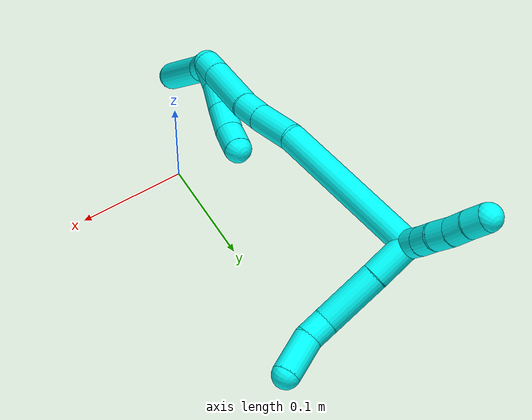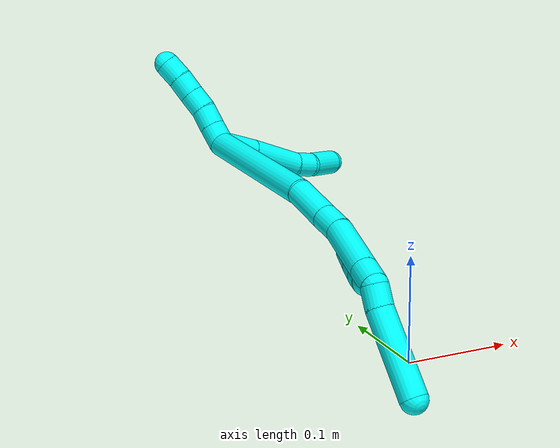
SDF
<sdf version="1.7">
 <world name="default">
  <model name="photoneo_s_sensor">
   <static>1</static>
   <pose>0 0 2 1.57079 1.57079 3.14159</pose>
   <link name="link">
    <inertial><mass>0.1</mass></inertial>
    <sensor name="sensor" type="depth">
     <update_rate>30</update_rate>
     <camera>
      <horizontal_fov>1.22</horizontal_fov>
      <image><width>1920</width><height>1200</height><format>B8G8R8</format></image>
      <clip><near>0.1</near><far>4</far></clip>
      <depth_camera><output>points</output></depth_camera>
     </camera>
     <plugin name="camera_plugin" filename="libgazebo_ros_depth_camera.so">
      <baseline>0.2</baseline>
      <alwaysOn>1</alwaysOn>
      <updateRate>0.0</updateRate>
      <cameraName>camera_ir</cameraName>
      <imageTopicName>/camera/color/image_raw</imageTopicName>
      <cameraInfoTopicName>/camera/color/camera_info</cameraInfoTopicName>
      <depthImageTopicName>/camera/depth/image_raw</depthImageTopicName>
      <depthImageCameraInfoTopicName>/camera/depth/camera_info</depthImageCameraInfoTopicName>
      <pointCloudTopicName>/camera/depth/points</pointCloudTopicName>
      <frameName>fr_optical</frameName>
      <pointCloudCutoff>0.1</pointCloudCutoff>
      <pointCloudCutoffMax>2.0</pointCloudCutoffMax>
      <distortionK1>0</distortionK1>
      <distortionK2>0</distortionK2>
      <distortionK3>0</distortionK3>
      <distortionT1>0</distortionT1>
      <distortionT2>0</distortionT2>
      <CxPrime>0</CxPrime>
      <Cx>0</Cx>
      <Cy>0</Cy>
      <focalLength>0</focalLength>
      <hackBaseline>0</hackBaseline>
     </plugin>
    </sensor>
   </link>
  </model>
  <model name="bin">
   <static>1</static>
   <link name="bottom">
    <collision name="collision-bottom">
     <pose>0 0 -0.01 0 -0 0</pose>
     <geometry><box><size>0.8 0.6 0.02</size></box></geometry>
     <surface>
      <friction><ode><mu>100</mu><mu2>100</mu2></ode></friction>
      <contact><collide_bitmask>65535</collide_bitmask></contact>
     </surface>
    </collision>
   </link>
   <link name="west_wall">
    <collision name="collision-west_wall">
     <pose>-0.41 0 0.1 0 -0 0</pose>
     <geometry><box><size>0.02 0.6 0.2</size></box></geometry>
     <surface>
      <friction><ode><mu>100</mu><mu2>100</mu2></ode></friction>
      <contact><collide_bitmask>65535</collide_bitmask></contact>
     </surface>
    </collision>
   </link>
   <link name="east_wall">
    <collision name="collision-east_wall">
     <pose>0.41 0 0.1 0 -0 0</pose>
     <geometry><box><size>0.02 0.6 0.2</size></box></geometry>
     <surface>
      <friction><ode><mu>100</mu><mu2>100</mu2></ode></friction>
      <contact><collide_bitmask>65535</collide_bitmask></contact>
     </surface>
    </collision>
   </link>
   <link name="south_wall">
    <collision name="collision-south_wall">
     <pose>0 -0.31 0.1 0 -0 0</pose>
     <geometry><box><size>0.8 0.02 0.2</size></box></geometry>
     <surface>
      <friction><ode><mu>100</mu><mu2>100</mu2></ode></friction>
      <contact><collide_bitmask>65535</collide_bitmask></contact>
     </surface>
    </collision>
   </link>
   <link name="north_wall">
    <collision name="collision-north_wall">
     <pose>0 0.31 0.1 0 -0 0</pose>
     <geometry><box><size>0.8 0.02 0.2</size></box></geometry>
     <surface>
      <friction><ode><mu>100</mu><mu2>100</mu2></ode></friction>
      <contact><collide_bitmask>65535</collide_bitmask></contact>
     </surface>
    </collision>
   </link>
  </model>
  <model name="3">
   <static>0</static>
   <link name="3">
    <collision name="collision-cylinder-e_1_2_8">
     <pose>-0.016974 -0.008459 -0.001041 1.69325 -1.10543 -1.21799</pose>
     <geometry><cylinder><radius>0.0125</radius><length>0.037987</length></cylinder></geometry>
     <surface>
      <friction><ode><mu>1.16</mu><mu2>1.16</mu2><slip1>0</slip1><slip2>0</slip2></ode></friction>
      <contact><ode><kp>1e+06</kp><kd>1</kd><max_vel>0</max_vel><min_depth>0.001</min_depth></ode></contact>
     </surface>
    </collision>
    <visual name="visual-cylinder-e_1_2_8">
     <pose>-0.016974 -0.008459 -0.001041 1.69325 -1.10543 -1.21799</pose>
     <geometry><cylinder><radius>0.0125</radius><length>0.037987</length></cylinder></geometry>
     <material><ambient>0.003922 1 0.996078 1</ambient></material>
    </visual>
    <collision name="collision-cylinder-e_2_8_9">
     <pose>-0.057909 -0.029763 -0.004849 1.78298 -1.06924 -1.26543</pose>
     <geometry><cylinder><radius>0.0125</radius><length>0.054656</length></cylinder></geometry>
     <surface>
      <friction><ode><mu>1.16</mu><mu2>1.16</mu2><slip1>0</slip1><slip2>0</slip2></ode></friction>
      <contact><ode><kp>1e+06</kp><kd>1</kd><max_vel>0</max_vel><min_depth>0.001</min_depth></ode></contact>
     </surface>
    </collision>
    <visual name="visual-cylinder-e_2_8_9">
     <pose>-0.057909 -0.029763 -0.004849 1.78298 -1.06924 -1.26543</pose>
     <geometry><cylinder><radius>0.0125</radius><length>0.054656</length></cylinder></geometry>
     <material><ambient>0.003922 1 0.996078 1</ambient></material>
    </visual>
    <collision name="collision-cylinder-e_3_9_10">
     <pose>-0.091592 -0.045762 -0.007115 1.41324 -1.25327 -1.10715</pose>
     <geometry><cylinder><radius>0.0125</radius><length>0.020464</length></cylinder></geometry>
     <surface>
      <friction><ode><mu>1.16</mu><mu2>1.16</mu2><slip1>0</slip1><slip2>0</slip2></ode></friction>
      <contact><ode><kp>1e+06</kp><kd>1</kd><max_vel>0</max_vel><min_depth>0.001</min_depth></ode></contact>
     </surface>
    </collision>
    <visual name="visual-cylinder-e_3_9_10">
     <pose>-0.091592 -0.045762 -0.007115 1.41324 -1.25327 -1.10715</pose>
     <geometry><cylinder><radius>0.0125</radius><length>0.020464</length></cylinder></geometry>
     <material><ambient>0.003922 1 0.996078 1</ambient></material>
    </visual>
    <collision name="collision-cylinder-e_4_10_6">
     <pose>-0.117479 -0.055264 -0.000397 0.795754 -1.0683 -0.48733</pose>
     <geometry><cylinder><radius>0.0125</radius><length>0.036894</length></cylinder></geometry>
     <surface>
      <friction><ode><mu>1.16</mu><mu2>1.16</mu2><slip1>0</slip1><slip2>0</slip2></ode></friction>
      <contact><ode><kp>1e+06</kp><kd>1</kd><max_vel>0</max_vel><min_depth>0.001</min_depth></ode></contact>
     </surface>
    </collision>
    <visual name="visual-cylinder-e_4_10_6">
     <pose>-0.117479 -0.055264 -0.000397 0.795754 -1.0683 -0.48733</pose>
     <geometry><cylinder><radius>0.0125</radius><length>0.036894</length></cylinder></geometry>
     <material><ambient>0.003922 1 0.996078 1</ambient></material>
    </visual>
    <collision name="collision-cylinder-e_1_2_11">
     <pose>0.001348 0.005822 0.008018 -0.628054 0.135238 -0.043982</pose>
     <geometry><cylinder><radius>0.0125</radius><length>0.02</length></cylinder></geometry>
     <surface>
      <friction><ode><mu>1.16</mu><mu2>1.16</mu2><slip1>0</slip1><slip2>0</slip2></ode></friction>
      <contact><ode><kp>1e+06</kp><kd>1</kd><max_vel>0</max_vel><min_depth>0.001</min_depth></ode></contact>
     </surface>
    </collision>
    <visual name="visual-cylinder-e_1_2_11">
     <pose>0.001348 0.005822 0.008018 -0.628054 0.135238 -0.043982</pose>
     <geometry><cylinder><radius>0.0125</radius><length>0.02</length></cylinder></geometry>
     <material><ambient>0.003922 1 0.996078 1</ambient></material>
    </visual>
    <collision name="collision-cylinder-e_2_11_12">
     <pose>0.004027 0.017978 0.023658 -0.693333 0.133482 -0.048283</pose>
     <geometry><cylinder><radius>0.0125</radius><length>0.02</length></cylinder></geometry>
     <surface>
      <friction><ode><mu>1.16</mu><mu2>1.16</mu2><slip1>0</slip1><slip2>0</slip2></ode></friction>
      <contact><ode><kp>1e+06</kp><kd>1</kd><max_vel>0</max_vel><min_depth>0.001</min_depth></ode></contact>
     </surface>
    </collision>
    <visual name="visual-cylinder-e_2_11_12">
     <pose>0.004027 0.017978 0.023658 -0.693333 0.133482 -0.048283</pose>
     <geometry><cylinder><radius>0.0125</radius><length>0.02</length></cylinder></geometry>
     <material><ambient>0.003922 1 0.996078 1</ambient></material>
    </visual>
    <collision name="collision-cylinder-e_3_12_13">
     <pose>0.008407 0.029881 0.039008 -0.624486 0.309798 -0.100726</pose>
     <geometry><cylinder><radius>0.0125</radius><length>0.02</length></cylinder></geometry>
     <surface>
      <friction><ode><mu>1.16</mu><mu2>1.16</mu2><slip1>0</slip1><slip2>0</slip2></ode></friction>
      <contact><ode><kp>1e+06</kp><kd>1</kd><max_vel>0</max_vel><min_depth>0.001</min_depth></ode></contact>
     </surface>
    </collision>
    <visual name="visual-cylinder-e_3_12_13">
     <pose>0.008407 0.029881 0.039008 -0.624486 0.309798 -0.100726</pose>
     <geometry><cylinder><radius>0.0125</radius><length>0.02</length></cylinder></geometry>
     <material><ambient>0.003922 1 0.996078 1</ambient></material>
    </visual>
    <collision name="collision-cylinder-e_4_13_14">
     <pose>0.014642 0.041692 0.053867 -0.71889 0.324275 -0.122777</pose>
     <geometry><cylinder><radius>0.0125</radius><length>0.02</length></cylinder></geometry>
     <surface>
      <friction><ode><mu>1.16</mu><mu2>1.16</mu2><slip1>0</slip1><slip2>0</slip2></ode></friction>
      <contact><ode><kp>1e+06</kp><kd>1</kd><max_vel>0</max_vel><min_depth>0.001</min_depth></ode></contact>
     </surface>
    </collision>
    <visual name="visual-cylinder-e_4_13_14">
     <pose>0.014642 0.041692 0.053867 -0.71889 0.324275 -0.122777</pose>
     <geometry><cylinder><radius>0.0125</radius><length>0.02</length></cylinder></geometry>
     <material><ambient>0.003922 1 0.996078 1</ambient></material>
    </visual>
    <collision name="collision-cylinder-e_5_14_5">
     <pose>0.021813 0.053633 0.068186 -0.670559 0.409895 -0.144603</pose>
     <geometry><cylinder><radius>0.0125</radius><length>0.02</length></cylinder></geometry>
     <surface>
      <friction><ode><mu>1.16</mu><mu2>1.16</mu2><slip1>0</slip1><slip2>0</slip2></ode></friction>
      <contact><ode><kp>1e+06</kp><kd>1</kd><max_vel>0</max_vel><min_depth>0.001</min_depth></ode></contact>
     </surface>
    </collision>
    <visual name="visual-cylinder-e_5_14_5">
     <pose>0.021813 0.053633 0.068186 -0.670559 0.409895 -0.144603</pose>
     <geometry><cylinder><radius>0.0125</radius><length>0.02</length></cylinder></geometry>
     <material><ambient>0.003922 1 0.996078 1</ambient></material>
    </visual>
    <collision name="collision-cylinder-e_1_2_15">
     <pose>-0.003718 0.015669 -0.074758 -2.93499 -0.048636 0.460905</pose>
     <geometry><cylinder><radius>0.0125</radius><length>0.152945</length></cylinder></geometry>
     <surface>
      <friction><ode><mu>1.16</mu><mu2>1.16</mu2><slip1>0</slip1><slip2>0</slip2></ode></friction>
      <contact><ode><kp>1e+06</kp><kd>1</kd><max_vel>0</max_vel><min_depth>0.001</min_depth></ode></contact>
     </surface>
    </collision>
    <visual name="visual-cylinder-e_1_2_15">
     <pose>-0.003718 0.015669 -0.074758 -2.93499 -0.048636 0.460905</pose>
     <geometry><cylinder><radius>0.0125</radius><length>0.152945</length></cylinder></geometry>
     <material><ambient>0.003922 1 0.996078 1</ambient></material>
    </visual>
    <collision name="collision-cylinder-e_2_15_16">
     <pose>-0.008643 0.030841 -0.171232 3.11877 -0.055505 -2.36148</pose>
     <geometry><cylinder><radius>0.0125</radius><length>0.04351</length></cylinder></geometry>
     <surface>
      <friction><ode><mu>1.16</mu><mu2>1.16</mu2><slip1>0</slip1><slip2>0</slip2></ode></friction>
      <contact><ode><kp>1e+06</kp><kd>1</kd><max_vel>0</max_vel><min_depth>0.001</min_depth></ode></contact>
     </surface>
    </collision>
    <visual name="visual-cylinder-e_2_15_16">
     <pose>-0.008643 0.030841 -0.171232 3.11877 -0.055505 -2.36148</pose>
     <geometry><cylinder><radius>0.0125</radius><length>0.04351</length></cylinder></geometry>
     <material><ambient>0.003922 1 0.996078 1</ambient></material>
    </visual>
    <collision name="collision-cylinder-e_3_16_17">
     <pose>-0.010087 0.030767 -0.204955 -3.10648 -0.019797 1.02679</pose>
     <geometry><cylinder><radius>0.0125</radius><length>0.024034</length></cylinder></geometry>
     <surface>
      <friction><ode><mu>1.16</mu><mu2>1.16</mu2><slip1>0</slip1><slip2>0</slip2></ode></friction>
      <contact><ode><kp>1e+06</kp><kd>1</kd><max_vel>0</max_vel><min_depth>0.001</min_depth></ode></contact>
     </surface>
    </collision>
    <visual name="visual-cylinder-e_3_16_17">
     <pose>-0.010087 0.030767 -0.204955 -3.10648 -0.019797 1.02679</pose>
     <geometry><cylinder><radius>0.0125</radius><length>0.024034</length></cylinder></geometry>
     <material><ambient>0.003922 1 0.996078 1</ambient></material>
    </visual>
    <collision name="collision-cylinder-e_4_17_18">
     <pose>-0.006038 0.031107 -0.245421 3.1387 0.14952 3.10293</pose>
     <geometry><cylinder><radius>0.0125</radius><length>0.05756</length></cylinder></geometry>
     <surface>
      <friction><ode><mu>1.16</mu><mu2>1.16</mu2><slip1>0</slip1><slip2>0</slip2></ode></friction>
      <contact><ode><kp>1e+06</kp><kd>1</kd><max_vel>0</max_vel><min_depth>0.001</min_depth></ode></contact>
     </surface>
    </collision>
    <visual name="visual-cylinder-e_4_17_18">
     <pose>-0.006038 0.031107 -0.245421 3.1387 0.14952 3.10293</pose>
     <geometry><cylinder><radius>0.0125</radius><length>0.05756</length></cylinder></geometry>
     <material><ambient>0.003922 1 0.996078 1</ambient></material>
    </visual>
    <collision name="collision-cylinder-e_5_18_1">
     <pose>-0.000142 0.030976 -0.284737 3.13713 0.147157 3.08106</pose>
     <geometry><cylinder><radius>0.0125</radius><length>0.02195</length></cylinder></geometry>
     <surface>
      <friction><ode><mu>1.16</mu><mu2>1.16</mu2><slip1>0</slip1><slip2>0</slip2></ode></friction>
      <contact><ode><kp>1e+06</kp><kd>1</kd><max_vel>0</max_vel><min_depth>0.001</min_depth></ode></contact>
     </surface>
    </collision>
    <visual name="visual-cylinder-e_5_18_1">
     <pose>-0.000142 0.030976 -0.284737 3.13713 0.147157 3.08106</pose>
     <geometry><cylinder><radius>0.0125</radius><length>0.02195</length></cylinder></geometry>
     <material><ambient>0.003922 1 0.996078 1</ambient></material>
    </visual>
    <collision name="collision-cylinder-e_1_1_19">
     <pose>0.002724 0.024063 -0.303034 2.39648 0.123444 0.313675</pose>
     <geometry><cylinder><radius>0.0125</radius><length>0.020404</length></cylinder></geometry>
     <surface>
      <friction><ode><mu>1.16</mu><mu2>1.16</mu2><slip1>0</slip1><slip2>0</slip2></ode></friction>
      <contact><ode><kp>1e+06</kp><kd>1</kd><max_vel>0</max_vel><min_depth>0.001</min_depth></ode></contact>
     </surface>
    </collision>
    <visual name="visual-cylinder-e_1_1_19">
     <pose>0.002724 0.024063 -0.303034 2.39648 0.123444 0.313675</pose>
     <geometry><cylinder><radius>0.0125</radius><length>0.020404</length></cylinder></geometry>
     <material><ambient>0.003922 1 0.996078 1</ambient></material>
    </visual>
    <collision name="collision-cylinder-e_2_19_4">
     <pose>0.005974 -0.004754 -0.343613 2.55652 0.050139 0.166129</pose>
     <geometry><cylinder><radius>0.0125</radius><length>0.079596</length></cylinder></geometry>
     <surface>
      <friction><ode><mu>1.16</mu><mu2>1.16</mu2><slip1>0</slip1><slip2>0</slip2></ode></friction>
      <contact><ode><kp>1e+06</kp><kd>1</kd><max_vel>0</max_vel><min_depth>0.001</min_depth></ode></contact>
     </surface>
    </collision>
    <visual name="visual-cylinder-e_2_19_4">
     <pose>0.005974 -0.004754 -0.343613 2.55652 0.050139 0.166129</pose>
     <geometry><cylinder><radius>0.0125</radius><length>0.079596</length></cylinder></geometry>
     <material><ambient>0.003922 1 0.996078 1</ambient></material>
    </visual>
    <collision name="collision-cylinder-e_1_1_20">
     <pose>-0.00078 0.025145 -0.286068 0.545617 -0.198996 -0.055846</pose>
     <geometry><cylinder><radius>0.0125</radius><length>0.022734</length></cylinder></geometry>
     <surface>
      <friction><ode><mu>1.16</mu><mu2>1.16</mu2><slip1>0</slip1><slip2>0</slip2></ode></friction>
      <contact><ode><kp>1e+06</kp><kd>1</kd><max_vel>0</max_vel><min_depth>0.001</min_depth></ode></contact>
     </surface>
    </collision>
    <visual name="visual-cylinder-e_1_1_20">
     <pose>-0.00078 0.025145 -0.286068 0.545617 -0.198996 -0.055846</pose>
     <geometry><cylinder><radius>0.0125</radius><length>0.022734</length></cylinder></geometry>
     <material><ambient>0.003922 1 0.996078 1</ambient></material>
    </visual>
    <collision name="collision-cylinder-e_2_20_21">
     <pose>-0.007461 0.013666 -0.266102 0.499475 -0.356818 -0.091924</pose>
     <geometry><cylinder><radius>0.0125</radius><length>0.025388</length></cylinder></geometry>
     <surface>
      <friction><ode><mu>1.16</mu><mu2>1.16</mu2><slip1>0</slip1><slip2>0</slip2></ode></friction>
      <contact><ode><kp>1e+06</kp><kd>1</kd><max_vel>0</max_vel><min_depth>0.001</min_depth></ode></contact>
     </surface>
    </collision>
    <visual name="visual-cylinder-e_2_20_21">
     <pose>-0.007461 0.013666 -0.266102 0.499475 -0.356818 -0.091924</pose>
     <geometry><cylinder><radius>0.0125</radius><length>0.025388</length></cylinder></geometry>
     <material><ambient>0.003922 1 0.996078 1</ambient></material>
    </visual>
    <collision name="collision-cylinder-e_3_21_22">
     <pose>-0.016578 0.003727 -0.243764 0.342456 -0.355084 -0.062035</pose>
     <geometry><cylinder><radius>0.0125</radius><length>0.026941</length></cylinder></geometry>
     <surface>
      <friction><ode><mu>1.16</mu><mu2>1.16</mu2><slip1>0</slip1><slip2>0</slip2></ode></friction>
      <contact><ode><kp>1e+06</kp><kd>1</kd><max_vel>0</max_vel><min_depth>0.001</min_depth></ode></contact>
     </surface>
    </collision>
    <visual name="visual-cylinder-e_3_21_22">
     <pose>-0.016578 0.003727 -0.243764 0.342456 -0.355084 -0.062035</pose>
     <geometry><cylinder><radius>0.0125</radius><length>0.026941</length></cylinder></geometry>
     <material><ambient>0.003922 1 0.996078 1</ambient></material>
    </visual>
    <collision name="collision-cylinder-e_4_22_3">
     <pose>-0.024848 -0.001724 -0.219987 0.101543 -0.291787 -0.014933</pose>
     <geometry><cylinder><radius>0.0125</radius><length>0.024938</length></cylinder></geometry>
     <surface>
      <friction><ode><mu>1.16</mu><mu2>1.16</mu2><slip1>0</slip1><slip2>0</slip2></ode></friction>
      <contact><ode><kp>1e+06</kp><kd>1</kd><max_vel>0</max_vel><min_depth>0.001</min_depth></ode></contact>
     </surface>
    </collision>
    <visual name="visual-cylinder-e_4_22_3">
     <pose>-0.024848 -0.001724 -0.219987 0.101543 -0.291787 -0.014933</pose>
     <geometry><cylinder><radius>0.0125</radius><length>0.024938</length></cylinder></geometry>
     <material><ambient>0.003922 1 0.996078 1</ambient></material>
    </visual>
    <collision name="collision-sphere-3">
     <pose>-0.028435 -0.002935 -0.208107 0 -0 0</pose>
     <geometry><sphere><radius>0.0125</radius></sphere></geometry>
     <surface>
      <friction><ode><mu>1.16</mu><mu2>1.16</mu2><slip1>0</slip1><slip2>0</slip2></ode></friction>
      <contact><ode><kp>1e+06</kp><kd>1</kd><max_vel>0</max_vel><min_depth>0.001</min_depth></ode></contact>
     </surface>
    </collision>
    <visual name="visual-sphere-3">
     <pose>-0.028435 -0.002935 -0.208107 0 -0 0</pose>
     <geometry><sphere><radius>0.0125</radius></sphere></geometry>
     <material><ambient>0.003922 1 0.996078 1</ambient></material>
    </visual>
    <collision name="collision-sphere-22">
     <pose>-0.021261 -0.000514 -0.231867 0 -0 0</pose>
     <geometry><sphere><radius>0.0125</radius></sphere></geometry>
     <surface>
      <friction><ode><mu>1.16</mu><mu2>1.16</mu2><slip1>0</slip1><slip2>0</slip2></ode></friction>
      <contact><ode><kp>1e+06</kp><kd>1</kd><max_vel>0</max_vel><min_depth>0.001</min_depth></ode></contact>
     </surface>
    </collision>
    <visual name="visual-sphere-22">
     <pose>-0.021261 -0.000514 -0.231867 0 -0 0</pose>
     <geometry><sphere><radius>0.0125</radius></sphere></geometry>
     <material><ambient>0.003922 1 0.996078 1</ambient></material>
    </visual>
    <collision name="collision-sphere-21">
     <pose>-0.011895 0.007969 -0.25566 0 -0 0</pose>
     <geometry><sphere><radius>0.0125</radius></sphere></geometry>
     <surface>
      <friction><ode><mu>1.16</mu><mu2>1.16</mu2><slip1>0</slip1><slip2>0</slip2></ode></friction>
      <contact><ode><kp>1e+06</kp><kd>1</kd><max_vel>0</max_vel><min_depth>0.001</min_depth></ode></contact>
     </surface>
    </collision>
    <visual name="visual-sphere-21">
     <pose>-0.011895 0.007969 -0.25566 0 -0 0</pose>
     <geometry><sphere><radius>0.0125</radius></sphere></geometry>
     <material><ambient>0.003922 1 0.996078 1</ambient></material>
    </visual>
    <collision name="collision-sphere-20">
     <pose>-0.003027 0.019363 -0.276543 0 -0 0</pose>
     <geometry><sphere><radius>0.0125</radius></sphere></geometry>
     <surface>
      <friction><ode><mu>1.16</mu><mu2>1.16</mu2><slip1>0</slip1><slip2>0</slip2></ode></friction>
      <contact><ode><kp>1e+06</kp><kd>1</kd><max_vel>0</max_vel><min_depth>0.001</min_depth></ode></contact>
     </surface>
    </collision>
    <visual name="visual-sphere-20">
     <pose>-0.003027 0.019363 -0.276543 0 -0 0</pose>
     <geometry><sphere><radius>0.0125</radius></sphere></geometry>
     <material><ambient>0.003922 1 0.996078 1</ambient></material>
    </visual>
    <collision name="collision-sphere-4">
     <pose>0.007969 -0.026705 -0.376749 0 -0 0</pose>
     <geometry><sphere><radius>0.0125</radius></sphere></geometry>
     <surface>
      <friction><ode><mu>1.16</mu><mu2>1.16</mu2><slip1>0</slip1><slip2>0</slip2></ode></friction>
      <contact><ode><kp>1e+06</kp><kd>1</kd><max_vel>0</max_vel><min_depth>0.001</min_depth></ode></contact>
     </surface>
    </collision>
    <visual name="visual-sphere-4">
     <pose>0.007969 -0.026705 -0.376749 0 -0 0</pose>
     <geometry><sphere><radius>0.0125</radius></sphere></geometry>
     <material><ambient>0.003922 1 0.996078 1</ambient></material>
    </visual>
    <collision name="collision-sphere-11">
     <pose>0.002697 0.011644 0.016036 0 -0 0</pose>
     <geometry><sphere><radius>0.0125</radius></sphere></geometry>
     <surface>
      <friction><ode><mu>1.16</mu><mu2>1.16</mu2><slip1>0</slip1><slip2>0</slip2></ode></friction>
      <contact><ode><kp>1e+06</kp><kd>1</kd><max_vel>0</max_vel><min_depth>0.001</min_depth></ode></contact>
     </surface>
    </collision>
    <visual name="visual-sphere-11">
     <pose>0.002697 0.011644 0.016036 0 -0 0</pose>
     <geometry><sphere><radius>0.0125</radius></sphere></geometry>
     <material><ambient>0.003922 1 0.996078 1</ambient></material>
    </visual>
    <collision name="collision-sphere-6">
     <pose>-0.133645 -0.061611 0.00582 0 -0 0</pose>
     <geometry><sphere><radius>0.0125</radius></sphere></geometry>
     <surface>
      <friction><ode><mu>1.16</mu><mu2>1.16</mu2><slip1>0</slip1><slip2>0</slip2></ode></friction>
      <contact><ode><kp>1e+06</kp><kd>1</kd><max_vel>0</max_vel><min_depth>0.001</min_depth></ode></contact>
     </surface>
    </collision>
    <visual name="visual-sphere-6">
     <pose>-0.133645 -0.061611 0.00582 0 -0 0</pose>
     <geometry><sphere><radius>0.0125</radius></sphere></geometry>
     <material><ambient>0.003922 1 0.996078 1</ambient></material>
    </visual>
    <collision name="collision-sphere-10">
     <pose>-0.101312 -0.048917 -0.006614 0 -0 0</pose>
     <geometry><sphere><radius>0.0125</radius></sphere></geometry>
     <surface>
      <friction><ode><mu>1.16</mu><mu2>1.16</mu2><slip1>0</slip1><slip2>0</slip2></ode></friction>
      <contact><ode><kp>1e+06</kp><kd>1</kd><max_vel>0</max_vel><min_depth>0.001</min_depth></ode></contact>
     </surface>
    </collision>
    <visual name="visual-sphere-10">
     <pose>-0.101312 -0.048917 -0.006614 0 -0 0</pose>
     <geometry><sphere><radius>0.0125</radius></sphere></geometry>
     <material><ambient>0.003922 1 0.996078 1</ambient></material>
    </visual>
    <collision name="collision-sphere-9">
     <pose>-0.081871 -0.042607 -0.007616 0 -0 0</pose>
     <geometry><sphere><radius>0.0125</radius></sphere></geometry>
     <surface>
      <friction><ode><mu>1.16</mu><mu2>1.16</mu2><slip1>0</slip1><slip2>0</slip2></ode></friction>
      <contact><ode><kp>1e+06</kp><kd>1</kd><max_vel>0</max_vel><min_depth>0.001</min_depth></ode></contact>
     </surface>
    </collision>
    <visual name="visual-sphere-9">
     <pose>-0.081871 -0.042607 -0.007616 0 -0 0</pose>
     <geometry><sphere><radius>0.0125</radius></sphere></geometry>
     <material><ambient>0.003922 1 0.996078 1</ambient></material>
    </visual>
    <collision name="collision-sphere-2">
     <geometry><sphere><radius>0.0125</radius></sphere></geometry>
     <surface>
      <friction><ode><mu>1.16</mu><mu2>1.16</mu2><slip1>0</slip1><slip2>0</slip2></ode></friction>
      <contact><ode><kp>1e+06</kp><kd>1</kd><max_vel>0</max_vel><min_depth>0.001</min_depth></ode></contact>
     </surface>
    </collision>
    <visual name="visual-sphere-2">
     <geometry><sphere><radius>0.0125</radius></sphere></geometry>
     <material><ambient>0.003922 1 0.996078 1</ambient></material>
    </visual>
    <collision name="collision-sphere-19">
     <pose>0.00398 0.017198 -0.310476 0 -0 0</pose>
     <geometry><sphere><radius>0.0125</radius></sphere></geometry>
     <surface>
      <friction><ode><mu>1.16</mu><mu2>1.16</mu2><slip1>0</slip1><slip2>0</slip2></ode></friction>
      <contact><ode><kp>1e+06</kp><kd>1</kd><max_vel>0</max_vel><min_depth>0.001</min_depth></ode></contact>
     </surface>
    </collision>
    <visual name="visual-sphere-19">
     <pose>0.00398 0.017198 -0.310476 0 -0 0</pose>
     <geometry><sphere><radius>0.0125</radius></sphere></geometry>
     <material><ambient>0.003922 1 0.996078 1</ambient></material>
    </visual>
    <collision name="collision-sphere-8">
     <pose>-0.033947 -0.016919 -0.002082 0 -0 0</pose>
     <geometry><sphere><radius>0.0125</radius></sphere></geometry>
     <surface>
      <friction><ode><mu>1.16</mu><mu2>1.16</mu2><slip1>0</slip1><slip2>0</slip2></ode></friction>
      <contact><ode><kp>1e+06</kp><kd>1</kd><max_vel>0</max_vel><min_depth>0.001</min_depth></ode></contact>
     </surface>
    </collision>
    <visual name="visual-sphere-8">
     <pose>-0.033947 -0.016919 -0.002082 0 -0 0</pose>
     <geometry><sphere><radius>0.0125</radius></sphere></geometry>
     <material><ambient>0.003922 1 0.996078 1</ambient></material>
    </visual>
    <collision name="collision-sphere-12">
     <pose>0.005358 0.024313 0.031281 0 -0 0</pose>
     <geometry><sphere><radius>0.0125</radius></sphere></geometry>
     <surface>
      <friction><ode><mu>1.16</mu><mu2>1.16</mu2><slip1>0</slip1><slip2>0</slip2></ode></friction>
      <contact><ode><kp>1e+06</kp><kd>1</kd><max_vel>0</max_vel><min_depth>0.001</min_depth></ode></contact>
     </surface>
    </collision>
    <visual name="visual-sphere-12">
     <pose>0.005358 0.024313 0.031281 0 -0 0</pose>
     <geometry><sphere><radius>0.0125</radius></sphere></geometry>
     <material><ambient>0.003922 1 0.996078 1</ambient></material>
    </visual>
    <collision name="collision-sphere-13">
     <pose>0.011456 0.035449 0.046734 0 -0 0</pose>
     <geometry><sphere><radius>0.0125</radius></sphere></geometry>
     <surface>
      <friction><ode><mu>1.16</mu><mu2>1.16</mu2><slip1>0</slip1><slip2>0</slip2></ode></friction>
      <contact><ode><kp>1e+06</kp><kd>1</kd><max_vel>0</max_vel><min_depth>0.001</min_depth></ode></contact>
     </surface>
    </collision>
    <visual name="visual-sphere-13">
     <pose>0.011456 0.035449 0.046734 0 -0 0</pose>
     <geometry><sphere><radius>0.0125</radius></sphere></geometry>
     <material><ambient>0.003922 1 0.996078 1</ambient></material>
    </visual>
    <collision name="collision-sphere-14">
     <pose>0.017828 0.047934 0.061 0 -0 0</pose>
     <geometry><sphere><radius>0.0125</radius></sphere></geometry>
     <surface>
      <friction><ode><mu>1.16</mu><mu2>1.16</mu2><slip1>0</slip1><slip2>0</slip2></ode></friction>
      <contact><ode><kp>1e+06</kp><kd>1</kd><max_vel>0</max_vel><min_depth>0.001</min_depth></ode></contact>
     </surface>
    </collision>
    <visual name="visual-sphere-14">
     <pose>0.017828 0.047934 0.061 0 -0 0</pose>
     <geometry><sphere><radius>0.0125</radius></sphere></geometry>
     <material><ambient>0.003922 1 0.996078 1</ambient></material>
    </visual>
    <collision name="collision-sphere-5">
     <pose>0.025798 0.059333 0.075372 0 -0 0</pose>
     <geometry><sphere><radius>0.0125</radius></sphere></geometry>
     <surface>
      <friction><ode><mu>1.16</mu><mu2>1.16</mu2><slip1>0</slip1><slip2>0</slip2></ode></friction>
      <contact><ode><kp>1e+06</kp><kd>1</kd><max_vel>0</max_vel><min_depth>0.001</min_depth></ode></contact>
     </surface>
    </collision>
    <visual name="visual-sphere-5">
     <pose>0.025798 0.059333 0.075372 0 -0 0</pose>
     <geometry><sphere><radius>0.0125</radius></sphere></geometry>
     <material><ambient>0.003922 1 0.996078 1</ambient></material>
    </visual>
    <collision name="collision-sphere-15">
     <pose>-0.007436 0.031337 -0.149516 0 -0 0</pose>
     <geometry><sphere><radius>0.0125</radius></sphere></geometry>
     <surface>
      <friction><ode><mu>1.16</mu><mu2>1.16</mu2><slip1>0</slip1><slip2>0</slip2></ode></friction>
      <contact><ode><kp>1e+06</kp><kd>1</kd><max_vel>0</max_vel><min_depth>0.001</min_depth></ode></contact>
     </surface>
    </collision>
    <visual name="visual-sphere-15">
     <pose>-0.007436 0.031337 -0.149516 0 -0 0</pose>
     <geometry><sphere><radius>0.0125</radius></sphere></geometry>
     <material><ambient>0.003922 1 0.996078 1</ambient></material>
    </visual>
    <collision name="collision-sphere-16">
     <pose>-0.00985 0.030346 -0.192948 0 -0 0</pose>
     <geometry><sphere><radius>0.0125</radius></sphere></geometry>
     <surface>
      <friction><ode><mu>1.16</mu><mu2>1.16</mu2><slip1>0</slip1><slip2>0</slip2></ode></friction>
      <contact><ode><kp>1e+06</kp><kd>1</kd><max_vel>0</max_vel><min_depth>0.001</min_depth></ode></contact>
     </surface>
    </collision>
    <visual name="visual-sphere-16">
     <pose>-0.00985 0.030346 -0.192948 0 -0 0</pose>
     <geometry><sphere><radius>0.0125</radius></sphere></geometry>
     <material><ambient>0.003922 1 0.996078 1</ambient></material>
    </visual>
    <collision name="collision-sphere-17">
     <pose>-0.010325 0.031189 -0.216963 0 -0 0</pose>
     <geometry><sphere><radius>0.0125</radius></sphere></geometry>
     <surface>
      <friction><ode><mu>1.16</mu><mu2>1.16</mu2><slip1>0</slip1><slip2>0</slip2></ode></friction>
      <contact><ode><kp>1e+06</kp><kd>1</kd><max_vel>0</max_vel><min_depth>0.001</min_depth></ode></contact>
     </surface>
    </collision>
    <visual name="visual-sphere-17">
     <pose>-0.010325 0.031189 -0.216963 0 -0 0</pose>
     <geometry><sphere><radius>0.0125</radius></sphere></geometry>
     <material><ambient>0.003922 1 0.996078 1</ambient></material>
    </visual>
    <collision name="collision-sphere-18">
     <pose>-0.001751 0.031024 -0.27388 0 -0 0</pose>
     <geometry><sphere><radius>0.0125</radius></sphere></geometry>
     <surface>
      <friction><ode><mu>1.16</mu><mu2>1.16</mu2><slip1>0</slip1><slip2>0</slip2></ode></friction>
      <contact><ode><kp>1e+06</kp><kd>1</kd><max_vel>0</max_vel><min_depth>0.001</min_depth></ode></contact>
     </surface>
    </collision>
    <visual name="visual-sphere-18">
     <pose>-0.001751 0.031024 -0.27388 0 -0 0</pose>
     <geometry><sphere><radius>0.0125</radius></sphere></geometry>
     <material><ambient>0.003922 1 0.996078 1</ambient></material>
    </visual>
    <collision name="collision-sphere-1">
     <pose>0.001467 0.030927 -0.295593 0 -0 0</pose>
     <geometry><sphere><radius>0.0125</radius></sphere></geometry>
     <surface>
      <friction><ode><mu>1.16</mu><mu2>1.16</mu2><slip1>0</slip1><slip2>0</slip2></ode></friction>
      <contact><ode><kp>1e+06</kp><kd>1</kd><max_vel>0</max_vel><min_depth>0.001</min_depth></ode></contact>
     </surface>
    </collision>
    <visual name="visual-sphere-1">
     <pose>0.001467 0.030927 -0.295593 0 -0 0</pose>
     <geometry><sphere><radius>0.0125</radius></sphere></geometry>
     <material><ambient>0.003922 1 0.996078 1</ambient></material>
    </visual>
    <inertial>
     <pose>-0.015058 0.008125 -0.132856 0 -0 0</pose>
     <mass>0.75</mass>
     <inertia>
      <ixx>0.000432</ixx>
      <ixy>0</ixy>
      <ixz>0</ixz>
      <iyy>-0.000119</iyy>
      <iyz>0</iyz>
      <izz>-5e-06</izz>
     </inertia>
    </inertial>
   </link>
   <pose>-0.077315 0.254553 0.155569 1.2529 0.116423 -3.08236</pose>
  </model>
 </world>
</sdf>
